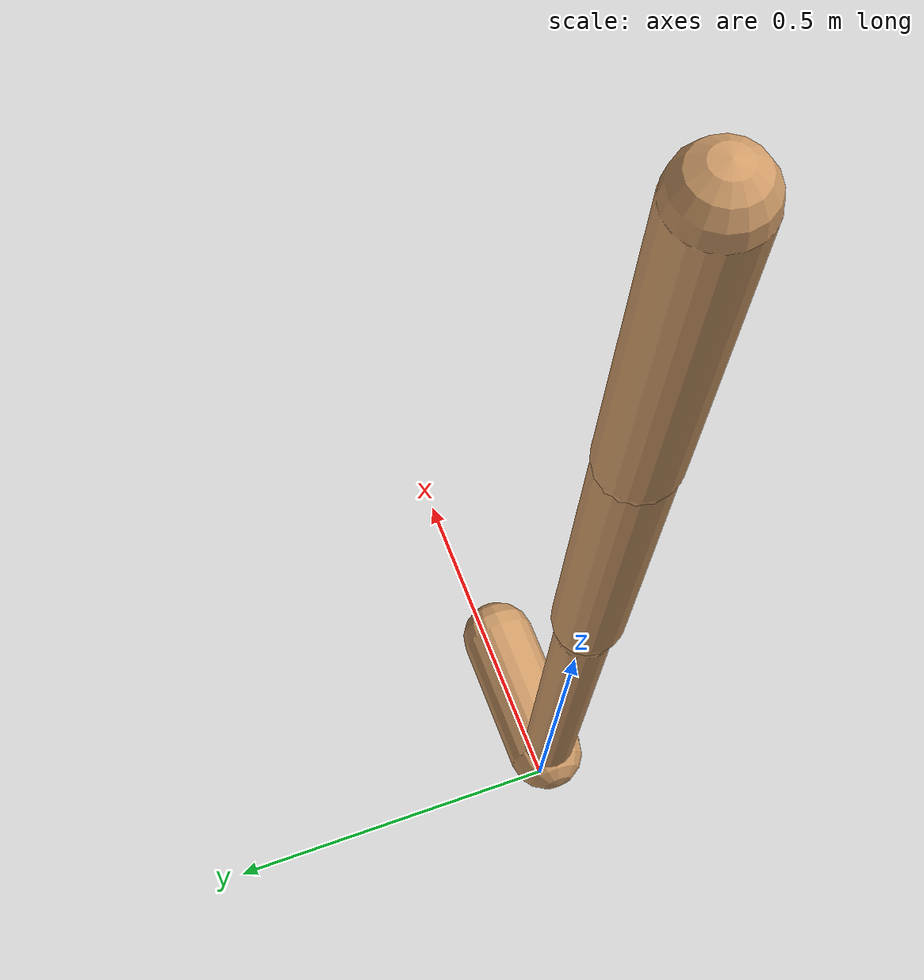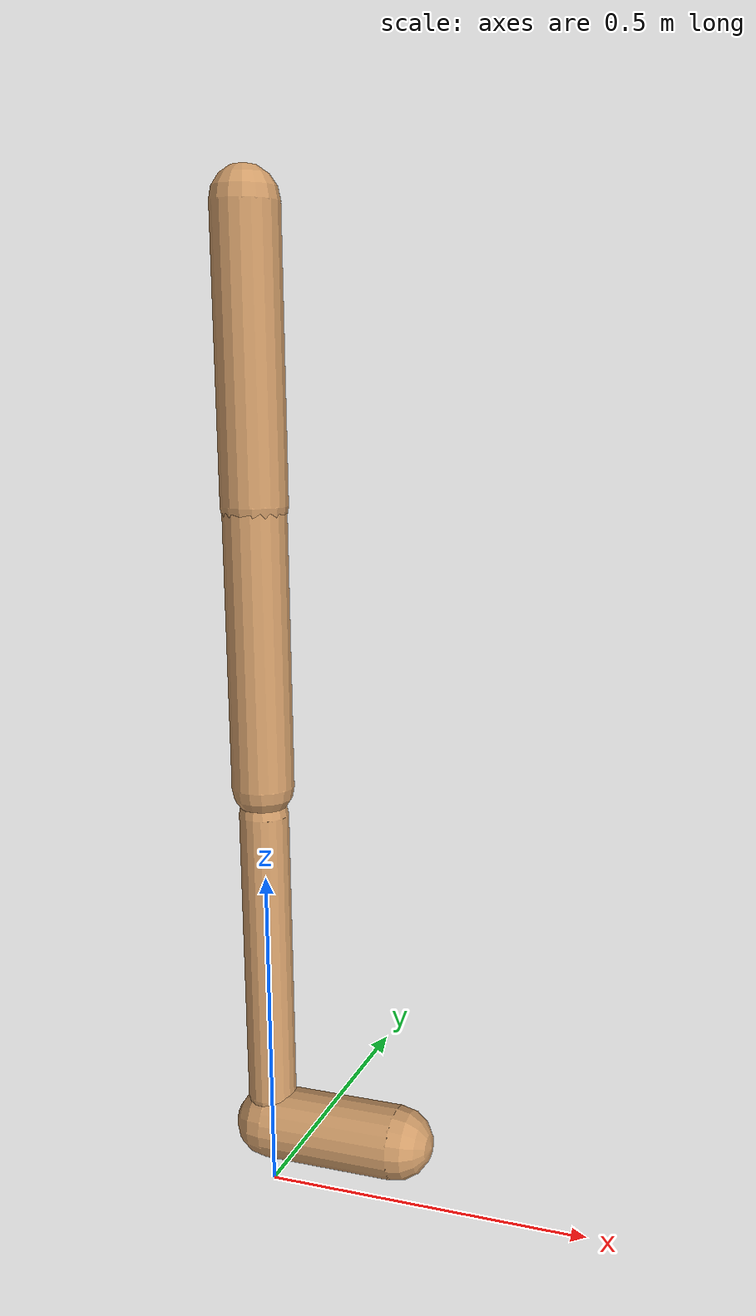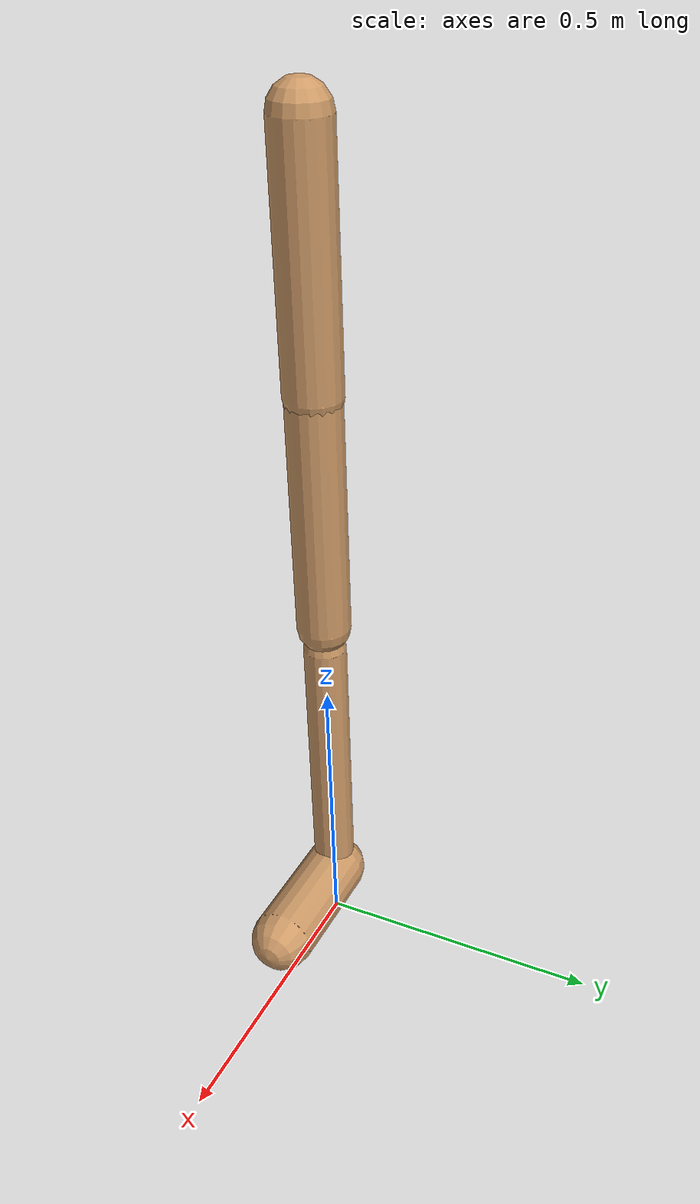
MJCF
<mujoco model="walker2d">
  <compiler angle="degree" coordinate="global" inertiafromgeom="true" />
  <default>
    <joint armature="0.01" damping=".1" limited="true" />
    <geom conaffinity="0" condim="3" contype="1" density="1000" friction="0.8 .1 .1" rgba="0.8 0.6 .4 1" />
  </default>
  <option integrator="RK4" timestep="0.002" />
  <worldbody>

    <body name="torso" pos="0 0 -0.09129039571324145">
      <joint armature="0" axis="1 0 0" damping="0" limited="false" name="ignorex" pos="0 0 0" stiffness="0" type="slide" />
      <joint armature="0" axis="0 0 1" damping="0" limited="false" name="ignorez" pos="0 0 0" ref="1.25" stiffness="0" type="slide" />
      <joint armature="0" axis="0 1 0" damping="0" limited="false" name="ignorey" pos="0 0 0" stiffness="0" type="hinge" />
      <geom fromto="0 0 1.45 0 0 1.05" name="torso_geom" size="0.047993882854173164" type="capsule" />
      <body name="thigh">
        <joint axis="0 -1 0" name="thigh_joint" pos="0 0 1.05" range="-150 0" type="hinge" />
        <geom fromto="0.0 0.0 1.05 0.0 0.0 0.6432428190220617" name="thigh_geom" size="0.04584163148571496" type="capsule" />
        <body name="leg" pos="0.0 0.0 0.04324281902206173">
          <joint axis="0 -1 0" name="leg_joint" pos="0 0 0.6" range="-150 0" type="hinge" />
          <geom fromto="0.0 0.0 0.6 0.0 0.0 0.1480475766911797" name="leg_geom" size="0.03667330518857197" type="capsule" />
          <body name="foot" pos="0.0 0.0 0.048047576691179705">
            <joint axis="0 -1 0" name="foot_joint" pos="0 0 0.1" range="-45 45" type="hinge" />
            <geom fromto="-0.0 0.0 0.1 0.2049975610987224 0.0 0.1" name="foot_geom" size="0.05566455155702321" type="capsule" />
          </body>
        </body>
      </body>

      <body name="thigh_left">
        <joint axis="0 -1 0" name="thigh_left_joint" pos="0 0 1.05" range="-150 0" type="hinge" />
        <geom fromto="0.0 0.0 1.05 0.0 0.0 0.6432428190220617" name="thigh_left_geom" rgba=".7 .3 .6 1" size="0.04584163148571496" type="capsule" />
        <body name="leg_left" pos="0.0 0.0 0.04324281902206173">
          <joint axis="0 -1 0" name="leg_left_joint" pos="0 0 0.6" range="-150 0" type="hinge" />
          <geom fromto="0.0 0.0 0.6 0.0 0.0 0.1480475766911797" name="leg_left_geom" rgba=".7 .3 .6 1" size="0.03667330518857197" type="capsule" />
          <body name="foot_left" pos="0.0 0.0 0.048047576691179705">
            <joint axis="0 -1 0" name="foot_left_joint" pos="0 0 0.1" range="-45 45" type="hinge" />
            <geom fromto="-0.0 0.0 0.1 0.2049975610987224 0.0 0.1" name="foot_left_geom" rgba=".7 .3 .6 1" size="0.05566455155702321" type="capsule" />
          </body>
        </body>
      </body>
    </body>
  </worldbody>
  <actuator>

    <motor ctrllimited="true" ctrlrange="-1.0 1.0" gear="100" joint="thigh_joint" />
    <motor ctrllimited="true" ctrlrange="-1.0 1.0" gear="100" joint="leg_joint" />
    <motor ctrllimited="true" ctrlrange="-1.0 1.0" gear="100" joint="foot_joint" />
    <motor ctrllimited="true" ctrlrange="-1.0 1.0" gear="100" joint="thigh_left_joint" />
    <motor ctrllimited="true" ctrlrange="-1.0 1.0" gear="100" joint="leg_left_joint" />
    <motor ctrllimited="true" ctrlrange="-1.0 1.0" gear="100" joint="foot_left_joint" />

  </actuator>
</mujoco>
